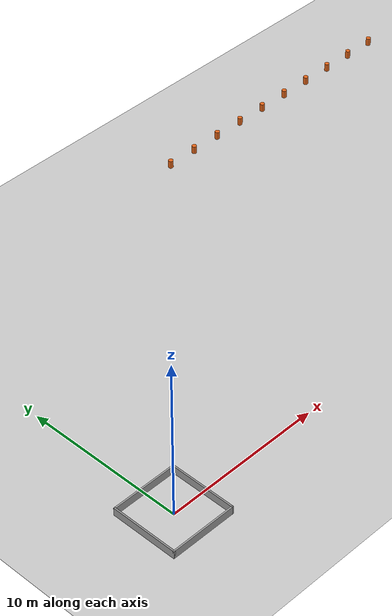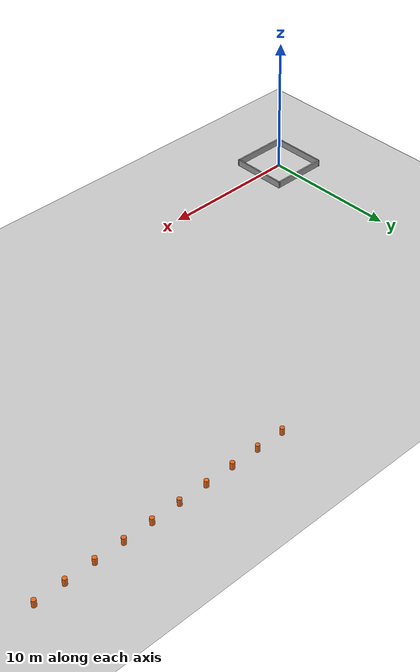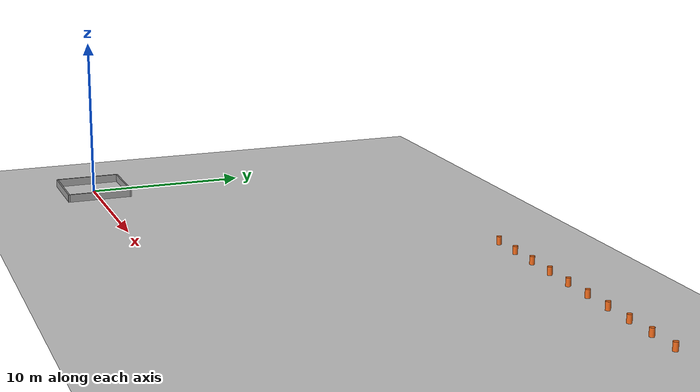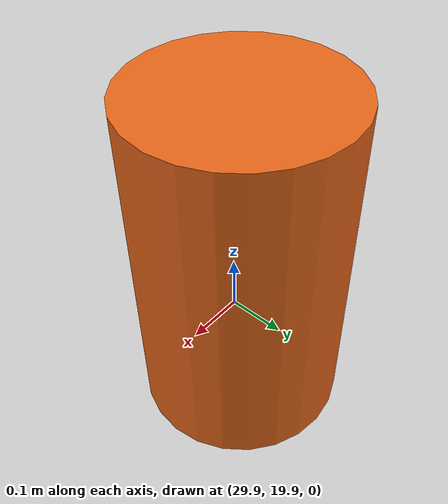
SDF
<?xml version="1.0"?>
<sdf version="1.8">
  <world name="rl_arena">
    <physics name="1ms" type="ignored">
      <max_step_size>0.001</max_step_size>
      <real_time_factor>1.0</real_time_factor>  <!-- raise this to train faster -->
    </physics>
    <plugin filename="gz-sim-physics-system" name="gz::sim::systems::Physics"/>
    <plugin filename="gz-sim-user-commands-system" name="gz::sim::systems::UserCommands"/>
    <plugin filename="gz-sim-scene-broadcaster-system" name="gz::sim::systems::SceneBroadcaster"/>
    <plugin filename="gz-sim-sensors-system" name="gz::sim::systems::Sensors">
      <render_engine>ogre2</render_engine>
    </plugin>
    <plugin filename="gz-sim-imu-system" name="gz::sim::systems::Imu"/>

    <light type="directional" name="sun">
      <cast_shadows>true</cast_shadows><pose>0 0 10 0 0 0</pose>
      <diffuse>0.9 0.9 0.9 1</diffuse><specular>0.2 0.2 0.2 1</specular>
      <direction>-0.5 0.1 -0.9</direction>
    </light>

    <model name="ground_plane"><static>true</static><link name="link">
      <collision name="col"><geometry><plane><normal>0 0 1</normal><size>100 100</size></plane></geometry></collision>
      <visual name="vis"><geometry><plane><normal>0 0 1</normal><size>100 100</size></plane></geometry>
        <material><ambient>0.8 0.8 0.8 1</ambient><diffuse>0.8 0.8 0.8 1</diffuse></material>
      </visual>
    </link></model>

    <model name="walls"><static>true</static><link name="link">

      <collision name="n_col"><pose>0 2.05 0.25 0 0 0</pose><geometry><box><size>4.2 0.1 0.5</size></box></geometry></collision>
      <visual name="n_vis"><pose>0 2.05 0.25 0 0 0</pose><geometry><box><size>4.2 0.1 0.5</size></box></geometry>
        <material><ambient>0.6 0.6 0.6 1</ambient><diffuse>0.6 0.6 0.6 1</diffuse></material></visual>
      <collision name="s_col"><pose>0 -2.05 0.25 0 0 0</pose><geometry><box><size>4.2 0.1 0.5</size></box></geometry></collision>
      <visual name="s_vis"><pose>0 -2.05 0.25 0 0 0</pose><geometry><box><size>4.2 0.1 0.5</size></box></geometry>
        <material><ambient>0.6 0.6 0.6 1</ambient><diffuse>0.6 0.6 0.6 1</diffuse></material></visual>

      <collision name="e_col"><pose>2.05 0 0.25 0 0 0</pose><geometry><box><size>0.1 4.2 0.5</size></box></geometry></collision>
      <visual name="e_vis"><pose>2.05 0 0.25 0 0 0</pose><geometry><box><size>0.1 4.2 0.5</size></box></geometry>
        <material><ambient>0.6 0.6 0.6 1</ambient><diffuse>0.6 0.6 0.6 1</diffuse></material></visual>
      <collision name="w_col"><pose>-2.05 0 0.25 0 0 0</pose><geometry><box><size>0.1 4.2 0.5</size></box></geometry></collision>
      <visual name="w_vis"><pose>-2.05 0 0.25 0 0 0</pose><geometry><box><size>0.1 4.2 0.5</size></box></geometry>
        <material><ambient>0.6 0.6 0.6 1</ambient><diffuse>0.6 0.6 0.6 1</diffuse></material></visual>
    </link></model>

    <model name="obstacle_0">
      <pose>20 20 0.25 0 0 0</pose>
      <link name="link">
        <inertial><mass>10.0</mass><inertia><ixx>0.2646</ixx><iyy>0.2646</iyy>
          <izz>0.1125</izz><ixy>0</ixy><ixz>0</ixz><iyz>0</iyz></inertia></inertial>
        <collision name="col"><geometry><cylinder><radius>0.15</radius><length>0.5</length></cylinder></geometry></collision>
        <visual name="vis"><geometry><cylinder><radius>0.15</radius><length>0.5</length></cylinder></geometry>
          <material><ambient>0.9 0.4 0.1 1</ambient><diffuse>0.9 0.4 0.1 1</diffuse></material>
        </visual>
      </link>
    </model>
    <model name="obstacle_1">
      <pose>22 20 0.25 0 0 0</pose>
      <link name="link">
        <inertial><mass>10.0</mass><inertia><ixx>0.2646</ixx><iyy>0.2646</iyy>
          <izz>0.1125</izz><ixy>0</ixy><ixz>0</ixz><iyz>0</iyz></inertia></inertial>
        <collision name="col"><geometry><cylinder><radius>0.15</radius><length>0.5</length></cylinder></geometry></collision>
        <visual name="vis"><geometry><cylinder><radius>0.15</radius><length>0.5</length></cylinder></geometry>
          <material><ambient>0.9 0.4 0.1 1</ambient><diffuse>0.9 0.4 0.1 1</diffuse></material>
        </visual>
      </link>
    </model>
    <model name="obstacle_2">
      <pose>24 20 0.25 0 0 0</pose>
      <link name="link">
        <inertial><mass>10.0</mass><inertia><ixx>0.2646</ixx><iyy>0.2646</iyy>
          <izz>0.1125</izz><ixy>0</ixy><ixz>0</ixz><iyz>0</iyz></inertia></inertial>
        <collision name="col"><geometry><cylinder><radius>0.15</radius><length>0.5</length></cylinder></geometry></collision>
        <visual name="vis"><geometry><cylinder><radius>0.15</radius><length>0.5</length></cylinder></geometry>
          <material><ambient>0.9 0.4 0.1 1</ambient><diffuse>0.9 0.4 0.1 1</diffuse></material>
        </visual>
      </link>
    </model>
    <model name="obstacle_3">
      <pose>26 20 0.25 0 0 0</pose>
      <link name="link">
        <inertial><mass>10.0</mass><inertia><ixx>0.2646</ixx><iyy>0.2646</iyy>
          <izz>0.1125</izz><ixy>0</ixy><ixz>0</ixz><iyz>0</iyz></inertia></inertial>
        <collision name="col"><geometry><cylinder><radius>0.15</radius><length>0.5</length></cylinder></geometry></collision>
        <visual name="vis"><geometry><cylinder><radius>0.15</radius><length>0.5</length></cylinder></geometry>
          <material><ambient>0.9 0.4 0.1 1</ambient><diffuse>0.9 0.4 0.1 1</diffuse></material>
        </visual>
      </link>
    </model>
    <model name="obstacle_4">
      <pose>28 20 0.25 0 0 0</pose>
      <link name="link">
        <inertial><mass>10.0</mass><inertia><ixx>0.2646</ixx><iyy>0.2646</iyy>
          <izz>0.1125</izz><ixy>0</ixy><ixz>0</ixz><iyz>0</iyz></inertia></inertial>
        <collision name="col"><geometry><cylinder><radius>0.15</radius><length>0.5</length></cylinder></geometry></collision>
        <visual name="vis"><geometry><cylinder><radius>0.15</radius><length>0.5</length></cylinder></geometry>
          <material><ambient>0.9 0.4 0.1 1</ambient><diffuse>0.9 0.4 0.1 1</diffuse></material>
        </visual>
      </link>
    </model>
    <model name="obstacle_5">
      <pose>30 20 0.25 0 0 0</pose>
      <link name="link">
        <inertial><mass>10.0</mass><inertia><ixx>0.2646</ixx><iyy>0.2646</iyy>
          <izz>0.1125</izz><ixy>0</ixy><ixz>0</ixz><iyz>0</iyz></inertia></inertial>
        <collision name="col"><geometry><cylinder><radius>0.15</radius><length>0.5</length></cylinder></geometry></collision>
        <visual name="vis"><geometry><cylinder><radius>0.15</radius><length>0.5</length></cylinder></geometry>
          <material><ambient>0.9 0.4 0.1 1</ambient><diffuse>0.9 0.4 0.1 1</diffuse></material>
        </visual>
      </link>
    </model>
    <model name="obstacle_6">
      <pose>32 20 0.25 0 0 0</pose>
      <link name="link">
        <inertial><mass>10.0</mass><inertia><ixx>0.2646</ixx><iyy>0.2646</iyy>
          <izz>0.1125</izz><ixy>0</ixy><ixz>0</ixz><iyz>0</iyz></inertia></inertial>
        <collision name="col"><geometry><cylinder><radius>0.15</radius><length>0.5</length></cylinder></geometry></collision>
        <visual name="vis"><geometry><cylinder><radius>0.15</radius><length>0.5</length></cylinder></geometry>
          <material><ambient>0.9 0.4 0.1 1</ambient><diffuse>0.9 0.4 0.1 1</diffuse></material>
        </visual>
      </link>
    </model>
    <model name="obstacle_7">
      <pose>34 20 0.25 0 0 0</pose>
      <link name="link">
        <inertial><mass>10.0</mass><inertia><ixx>0.2646</ixx><iyy>0.2646</iyy>
          <izz>0.1125</izz><ixy>0</ixy><ixz>0</ixz><iyz>0</iyz></inertia></inertial>
        <collision name="col"><geometry><cylinder><radius>0.15</radius><length>0.5</length></cylinder></geometry></collision>
        <visual name="vis"><geometry><cylinder><radius>0.15</radius><length>0.5</length></cylinder></geometry>
          <material><ambient>0.9 0.4 0.1 1</ambient><diffuse>0.9 0.4 0.1 1</diffuse></material>
        </visual>
      </link>
    </model>
    <model name="obstacle_8">
      <pose>36 20 0.25 0 0 0</pose>
      <link name="link">
        <inertial><mass>10.0</mass><inertia><ixx>0.2646</ixx><iyy>0.2646</iyy>
          <izz>0.1125</izz><ixy>0</ixy><ixz>0</ixz><iyz>0</iyz></inertia></inertial>
        <collision name="col"><geometry><cylinder><radius>0.15</radius><length>0.5</length></cylinder></geometry></collision>
        <visual name="vis"><geometry><cylinder><radius>0.15</radius><length>0.5</length></cylinder></geometry>
          <material><ambient>0.9 0.4 0.1 1</ambient><diffuse>0.9 0.4 0.1 1</diffuse></material>
        </visual>
      </link>
    </model>
    <model name="obstacle_9">
      <pose>38 20 0.25 0 0 0</pose>
      <link name="link">
        <inertial><mass>10.0</mass><inertia><ixx>0.2646</ixx><iyy>0.2646</iyy>
          <izz>0.1125</izz><ixy>0</ixy><ixz>0</ixz><iyz>0</iyz></inertia></inertial>
        <collision name="col"><geometry><cylinder><radius>0.15</radius><length>0.5</length></cylinder></geometry></collision>
        <visual name="vis"><geometry><cylinder><radius>0.15</radius><length>0.5</length></cylinder></geometry>
          <material><ambient>0.9 0.4 0.1 1</ambient><diffuse>0.9 0.4 0.1 1</diffuse></material>
        </visual>
      </link>
    </model>
  </world>
</sdf>
